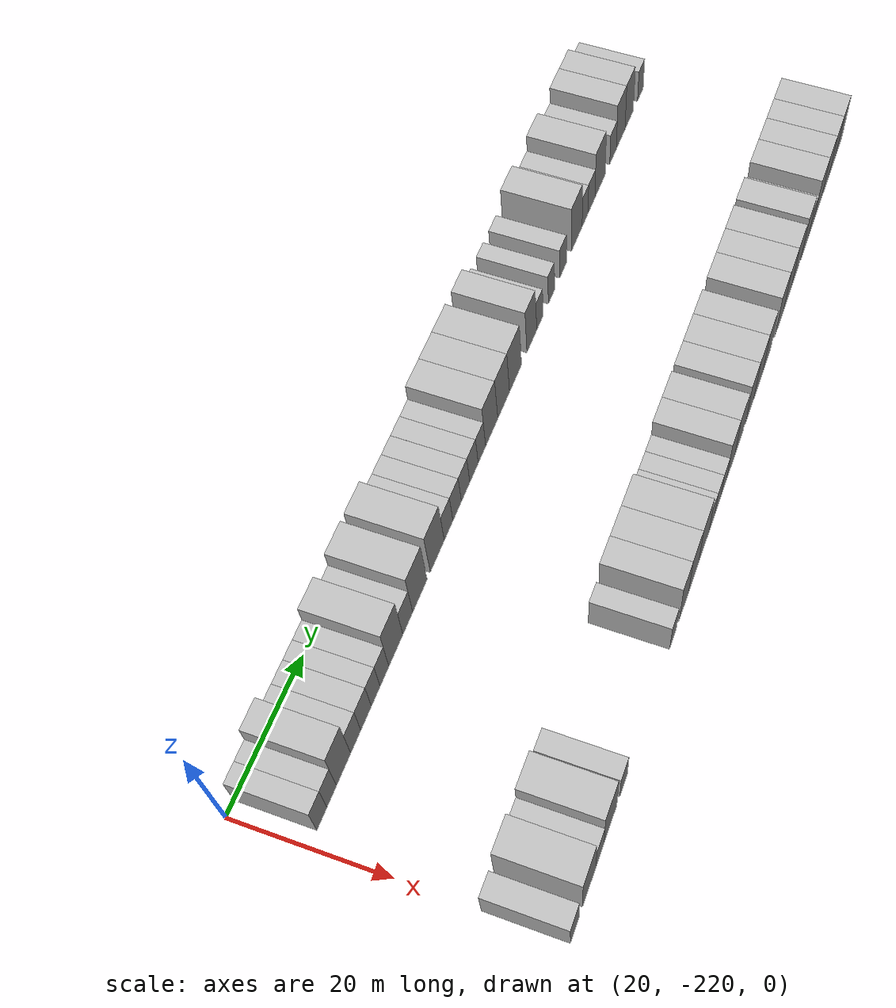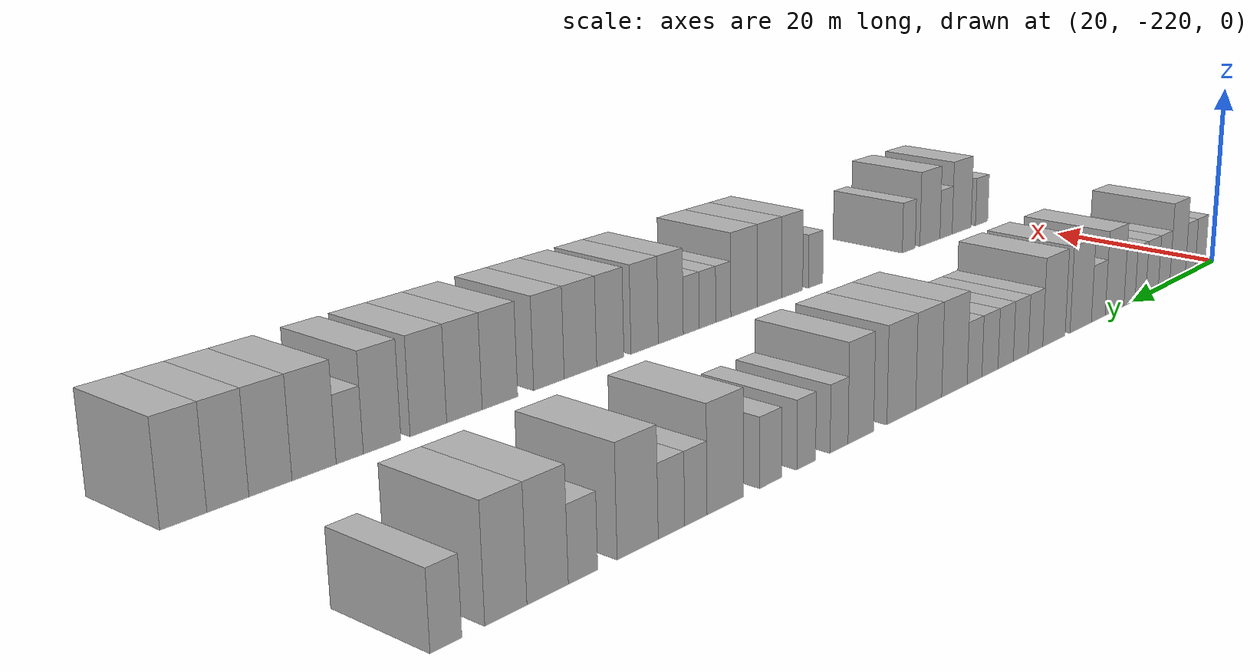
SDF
<sdf version="1.6">
 <world name="default">
  <model name="building_1">
   <static>1</static>
   <pose>25.0000 -216.6692 0 0.000000 0.000000 0.000000</pose>
   <link name="link">
    <pose>0 0 3.00 0 0 0</pose>
    <collision name="collision"><geometry><box><size>10.0000 2.6616 6.0000</size></box></geometry></collision>
    <visual name="visual">
     <cast_shadows>0</cast_shadows>
     <geometry><box><size>10.0000 2.6616 6.0000</size></box></geometry>
     <material>
      <script>
       <uri>model://HANNAS_wall/materials/scripts</uri>
       <uri>model://HANNAS_wall/materials/textures</uri>
       <name>vrc/HANNAS_wall</name>
      </script>
     </material>
    </visual>
   </link>
  </model>
  <model name="building_2">
   <static>1</static>
   <pose>25.0000 -214.0633 0 0.000000 0.000000 0.000000</pose>
   <link name="link">
    <pose>0 0 3.00 0 0 0</pose>
    <collision name="collision"><geometry><box><size>10.0000 2.5503 6.0000</size></box></geometry></collision>
    <visual name="visual">
     <cast_shadows>0</cast_shadows>
     <geometry><box><size>10.0000 2.5503 6.0000</size></box></geometry>
     <material>
      <script>
       <uri>model://HANNAS_wall/materials/scripts</uri>
       <uri>model://HANNAS_wall/materials/textures</uri>
       <name>vrc/HANNAS_wall</name>
      </script>
     </material>
    </visual>
   </link>
  </model>
  <model name="building_3">
   <static>1</static>
   <pose>25.0000 -210.8497 0 0.000000 0.000000 0.000000</pose>
   <link name="link">
    <pose>0 0 4.50 0 0 0</pose>
    <collision name="collision"><geometry><box><size>10.0000 3.8767 9.0000</size></box></geometry></collision>
    <visual name="visual">
     <cast_shadows>0</cast_shadows>
     <geometry><box><size>10.0000 3.8767 9.0000</size></box></geometry>
     <material>
      <script>
       <uri>model://HANNAS_wall/materials/scripts</uri>
       <uri>model://HANNAS_wall/materials/textures</uri>
       <name>vrc/HANNAS_wall</name>
      </script>
     </material>
    </visual>
   </link>
  </model>
  <model name="building_4">
   <static>1</static>
   <pose>25.0000 -207.5015 0 0.000000 0.000000 0.000000</pose>
   <link name="link">
    <pose>0 0 3.00 0 0 0</pose>
    <collision name="collision"><geometry><box><size>10.0000 2.8198 6.0000</size></box></geometry></collision>
    <visual name="visual">
     <cast_shadows>0</cast_shadows>
     <geometry><box><size>10.0000 2.8198 6.0000</size></box></geometry>
     <material>
      <script>
       <uri>model://HANNAS_wall/materials/scripts</uri>
       <uri>model://HANNAS_wall/materials/textures</uri>
       <name>vrc/HANNAS_wall</name>
      </script>
     </material>
    </visual>
   </link>
  </model>
  <model name="building_5">
   <static>1</static>
   <pose>25.0000 -204.5973 0 0.000000 0.000000 0.000000</pose>
   <link name="link">
    <pose>0 0 3.00 0 0 0</pose>
    <collision name="collision"><geometry><box><size>10.0000 2.9886 6.0000</size></box></geometry></collision>
    <visual name="visual">
     <cast_shadows>0</cast_shadows>
     <geometry><box><size>10.0000 2.9886 6.0000</size></box></geometry>
     <material>
      <script>
       <uri>model://HANNAS_wall/materials/scripts</uri>
       <uri>model://HANNAS_wall/materials/textures</uri>
       <name>vrc/HANNAS_wall</name>
      </script>
     </material>
    </visual>
   </link>
  </model>
  <model name="building_6">
   <static>1</static>
   <pose>25.0000 -201.8396 0 0.000000 0.000000 0.000000</pose>
   <link name="link">
    <pose>0 0 3.00 0 0 0</pose>
    <collision name="collision"><geometry><box><size>10.0000 2.5268 6.0000</size></box></geometry></collision>
    <visual name="visual">
     <cast_shadows>0</cast_shadows>
     <geometry><box><size>10.0000 2.5268 6.0000</size></box></geometry>
     <material>
      <script>
       <uri>model://HANNAS_wall/materials/scripts</uri>
       <uri>model://HANNAS_wall/materials/textures</uri>
       <name>vrc/HANNAS_wall</name>
      </script>
     </material>
    </visual>
   </link>
  </model>
  <model name="building_7">
   <static>1</static>
   <pose>25.0000 -199.2995 0 0.000000 0.000000 0.000000</pose>
   <link name="link">
    <pose>0 0 3.00 0 0 0</pose>
    <collision name="collision"><geometry><box><size>10.0000 2.5535 6.0000</size></box></geometry></collision>
    <visual name="visual">
     <cast_shadows>0</cast_shadows>
     <geometry><box><size>10.0000 2.5535 6.0000</size></box></geometry>
     <material>
      <script>
       <uri>model://HANNAS_wall/materials/scripts</uri>
       <uri>model://HANNAS_wall/materials/textures</uri>
       <name>vrc/HANNAS_wall</name>
      </script>
     </material>
    </visual>
   </link>
  </model>
  <model name="building_8">
   <static>1</static>
   <pose>25.0000 -195.9334 0 0.000000 0.000000 0.000000</pose>
   <link name="link">
    <pose>0 0 4.50 0 0 0</pose>
    <collision name="collision"><geometry><box><size>10.0000 4.1788 9.0000</size></box></geometry></collision>
    <visual name="visual">
     <cast_shadows>0</cast_shadows>
     <geometry><box><size>10.0000 4.1788 9.0000</size></box></geometry>
     <material>
      <script>
       <uri>model://HANNAS_wall/materials/scripts</uri>
       <uri>model://HANNAS_wall/materials/textures</uri>
       <name>vrc/HANNAS_wall</name>
      </script>
     </material>
    </visual>
   </link>
  </model>
  <model name="building_9">
   <static>1</static>
   <pose>25.0000 -192.3451 0 0.000000 0.000000 0.000000</pose>
   <link name="link">
    <pose>0 0 3.00 0 0 0</pose>
    <collision name="collision"><geometry><box><size>10.0000 2.9979 6.0000</size></box></geometry></collision>
    <visual name="visual">
     <cast_shadows>0</cast_shadows>
     <geometry><box><size>10.0000 2.9979 6.0000</size></box></geometry>
     <material>
      <script>
       <uri>model://HANNAS_wall/materials/scripts</uri>
       <uri>model://HANNAS_wall/materials/textures</uri>
       <name>vrc/HANNAS_wall</name>
      </script>
     </material>
    </visual>
   </link>
  </model>
  <model name="building_10">
   <static>1</static>
   <pose>25.0000 -188.6095 0 0.000000 0.000000 0.000000</pose>
   <link name="link">
    <pose>0 0 4.50 0 0 0</pose>
    <collision name="collision"><geometry><box><size>10.0000 4.4733 9.0000</size></box></geometry></collision>
    <visual name="visual">
     <cast_shadows>0</cast_shadows>
     <geometry><box><size>10.0000 4.4733 9.0000</size></box></geometry>
     <material>
      <script>
       <uri>model://HANNAS_wall/materials/scripts</uri>
       <uri>model://HANNAS_wall/materials/textures</uri>
       <name>vrc/HANNAS_wall</name>
      </script>
     </material>
    </visual>
   </link>
  </model>
  <model name="building_11">
   <static>1</static>
   <pose>25.0000 -183.1339 0 0.000000 0.000000 0.000000</pose>
   <link name="link">
    <pose>0 0 4.50 0 0 0</pose>
    <collision name="collision"><geometry><box><size>10.0000 4.4779 9.0000</size></box></geometry></collision>
    <visual name="visual">
     <cast_shadows>0</cast_shadows>
     <geometry><box><size>10.0000 4.4779 9.0000</size></box></geometry>
     <material>
      <script>
       <uri>model://HANNAS_wall/materials/scripts</uri>
       <uri>model://HANNAS_wall/materials/textures</uri>
       <name>vrc/HANNAS_wall</name>
      </script>
     </material>
    </visual>
   </link>
  </model>
  <model name="building_12">
   <static>1</static>
   <pose>25.0000 -179.4846 0 0.000000 0.000000 0.000000</pose>
   <link name="link">
    <pose>0 0 3.00 0 0 0</pose>
    <collision name="collision"><geometry><box><size>10.0000 2.8207 6.0000</size></box></geometry></collision>
    <visual name="visual">
     <cast_shadows>0</cast_shadows>
     <geometry><box><size>10.0000 2.8207 6.0000</size></box></geometry>
     <material>
      <script>
       <uri>model://HANNAS_wall/materials/scripts</uri>
       <uri>model://HANNAS_wall/materials/textures</uri>
       <name>vrc/HANNAS_wall</name>
      </script>
     </material>
    </visual>
   </link>
  </model>
  <model name="building_13">
   <static>1</static>
   <pose>25.0000 -176.6649 0 0.000000 0.000000 0.000000</pose>
   <link name="link">
    <pose>0 0 3.00 0 0 0</pose>
    <collision name="collision"><geometry><box><size>10.0000 2.8188 6.0000</size></box></geometry></collision>
    <visual name="visual">
     <cast_shadows>0</cast_shadows>
     <geometry><box><size>10.0000 2.8188 6.0000</size></box></geometry>
     <material>
      <script>
       <uri>model://HANNAS_wall/materials/scripts</uri>
       <uri>model://HANNAS_wall/materials/textures</uri>
       <name>vrc/HANNAS_wall</name>
      </script>
     </material>
    </visual>
   </link>
  </model>
  <model name="building_14">
   <static>1</static>
   <pose>25.0000 -173.8461 0 0.000000 0.000000 0.000000</pose>
   <link name="link">
    <pose>0 0 3.00 0 0 0</pose>
    <collision name="collision"><geometry><box><size>10.0000 2.8188 6.0000</size></box></geometry></collision>
    <visual name="visual">
     <cast_shadows>0</cast_shadows>
     <geometry><box><size>10.0000 2.8188 6.0000</size></box></geometry>
     <material>
      <script>
       <uri>model://HANNAS_wall/materials/scripts</uri>
       <uri>model://HANNAS_wall/materials/textures</uri>
       <name>vrc/HANNAS_wall</name>
      </script>
     </material>
    </visual>
   </link>
  </model>
  <model name="building_15">
   <static>1</static>
   <pose>25.0000 -170.9920 0 0.000000 0.000000 0.000000</pose>
   <link name="link">
    <pose>0 0 3.00 0 0 0</pose>
    <collision name="collision"><geometry><box><size>10.0000 2.8892 6.0000</size></box></geometry></collision>
    <visual name="visual">
     <cast_shadows>0</cast_shadows>
     <geometry><box><size>10.0000 2.8892 6.0000</size></box></geometry>
     <material>
      <script>
       <uri>model://HANNAS_wall/materials/scripts</uri>
       <uri>model://HANNAS_wall/materials/textures</uri>
       <name>vrc/HANNAS_wall</name>
      </script>
     </material>
    </visual>
   </link>
  </model>
  <model name="building_16">
   <static>1</static>
   <pose>25.0000 -168.2565 0 0.000000 0.000000 0.000000</pose>
   <link name="link">
    <pose>0 0 3.00 0 0 0</pose>
    <collision name="collision"><geometry><box><size>10.0000 2.5820 6.0000</size></box></geometry></collision>
    <visual name="visual">
     <cast_shadows>0</cast_shadows>
     <geometry><box><size>10.0000 2.5820 6.0000</size></box></geometry>
     <material>
      <script>
       <uri>model://HANNAS_wall/materials/scripts</uri>
       <uri>model://HANNAS_wall/materials/textures</uri>
       <name>vrc/HANNAS_wall</name>
      </script>
     </material>
    </visual>
   </link>
  </model>
  <model name="building_17">
   <static>1</static>
   <pose>25.0000 -164.8124 0 0.000000 0.000000 0.000000</pose>
   <link name="link">
    <pose>0 0 4.50 0 0 0</pose>
    <collision name="collision"><geometry><box><size>10.0000 4.3063 9.0000</size></box></geometry></collision>
    <visual name="visual">
     <cast_shadows>0</cast_shadows>
     <geometry><box><size>10.0000 4.3063 9.0000</size></box></geometry>
     <material>
      <script>
       <uri>model://HANNAS_wall/materials/scripts</uri>
       <uri>model://HANNAS_wall/materials/textures</uri>
       <name>vrc/HANNAS_wall</name>
      </script>
     </material>
    </visual>
   </link>
  </model>
  <model name="building_18">
   <static>1</static>
   <pose>25.0000 -160.5485 0 0.000000 0.000000 0.000000</pose>
   <link name="link">
    <pose>0 0 4.50 0 0 0</pose>
    <collision name="collision"><geometry><box><size>10.0000 4.2215 9.0000</size></box></geometry></collision>
    <visual name="visual">
     <cast_shadows>0</cast_shadows>
     <geometry><box><size>10.0000 4.2215 9.0000</size></box></geometry>
     <material>
      <script>
       <uri>model://HANNAS_wall/materials/scripts</uri>
       <uri>model://HANNAS_wall/materials/textures</uri>
       <name>vrc/HANNAS_wall</name>
      </script>
     </material>
    </visual>
   </link>
  </model>
  <model name="building_19">
   <static>1</static>
   <pose>25.0000 -156.2051 0 0.000000 0.000000 0.000000</pose>
   <link name="link">
    <pose>0 0 4.50 0 0 0</pose>
    <collision name="collision"><geometry><box><size>10.0000 4.4653 9.0000</size></box></geometry></collision>
    <visual name="visual">
     <cast_shadows>0</cast_shadows>
     <geometry><box><size>10.0000 4.4653 9.0000</size></box></geometry>
     <material>
      <script>
       <uri>model://HANNAS_wall/materials/scripts</uri>
       <uri>model://HANNAS_wall/materials/textures</uri>
       <name>vrc/HANNAS_wall</name>
      </script>
     </material>
    </visual>
   </link>
  </model>
  <model name="building_20">
   <static>1</static>
   <pose>25.0000 -150.1015 0 0.000000 0.000000 0.000000</pose>
   <link name="link">
    <pose>0 0 4.50 0 0 0</pose>
    <collision name="collision"><geometry><box><size>10.0000 3.7419 9.0000</size></box></geometry></collision>
    <visual name="visual">
     <cast_shadows>0</cast_shadows>
     <geometry><box><size>10.0000 3.7419 9.0000</size></box></geometry>
     <material>
      <script>
       <uri>model://HANNAS_wall/materials/scripts</uri>
       <uri>model://HANNAS_wall/materials/textures</uri>
       <name>vrc/HANNAS_wall</name>
      </script>
     </material>
    </visual>
   </link>
  </model>
  <model name="building_21">
   <static>1</static>
   <pose>25.0000 -146.9632 0 0.000000 0.000000 0.000000</pose>
   <link name="link">
    <pose>0 0 3.00 0 0 0</pose>
    <collision name="collision"><geometry><box><size>10.0000 2.5347 6.0000</size></box></geometry></collision>
    <visual name="visual">
     <cast_shadows>0</cast_shadows>
     <geometry><box><size>10.0000 2.5347 6.0000</size></box></geometry>
     <material>
      <script>
       <uri>model://HANNAS_wall/materials/scripts</uri>
       <uri>model://HANNAS_wall/materials/textures</uri>
       <name>vrc/HANNAS_wall</name>
      </script>
     </material>
    </visual>
   </link>
  </model>
  <model name="building_22">
   <static>1</static>
   <pose>25.0000 -142.4264 0 0.000000 0.000000 0.000000</pose>
   <link name="link">
    <pose>0 0 3.00 0 0 0</pose>
    <collision name="collision"><geometry><box><size>10.0000 2.5390 6.0000</size></box></geometry></collision>
    <visual name="visual">
     <cast_shadows>0</cast_shadows>
     <geometry><box><size>10.0000 2.5390 6.0000</size></box></geometry>
     <material>
      <script>
       <uri>model://HANNAS_wall/materials/scripts</uri>
       <uri>model://HANNAS_wall/materials/textures</uri>
       <name>vrc/HANNAS_wall</name>
      </script>
     </material>
    </visual>
   </link>
  </model>
  <model name="building_23">
   <static>1</static>
   <pose>25.0000 -137.7569 0 0.000000 0.000000 0.000000</pose>
   <link name="link">
    <pose>0 0 3.00 0 0 0</pose>
    <collision name="collision"><geometry><box><size>10.0000 2.7999 6.0000</size></box></geometry></collision>
    <visual name="visual">
     <cast_shadows>0</cast_shadows>
     <geometry><box><size>10.0000 2.7999 6.0000</size></box></geometry>
     <material>
      <script>
       <uri>model://HANNAS_wall/materials/scripts</uri>
       <uri>model://HANNAS_wall/materials/textures</uri>
       <name>vrc/HANNAS_wall</name>
      </script>
     </material>
    </visual>
   </link>
  </model>
  <model name="building_24">
   <static>1</static>
   <pose>25.0000 -132.1491 0 0.000000 0.000000 0.000000</pose>
   <link name="link">
    <pose>0 0 4.50 0 0 0</pose>
    <collision name="collision"><geometry><box><size>10.0000 4.4158 9.0000</size></box></geometry></collision>
    <visual name="visual">
     <cast_shadows>0</cast_shadows>
     <geometry><box><size>10.0000 4.4158 9.0000</size></box></geometry>
     <material>
      <script>
       <uri>model://HANNAS_wall/materials/scripts</uri>
       <uri>model://HANNAS_wall/materials/textures</uri>
       <name>vrc/HANNAS_wall</name>
      </script>
     </material>
    </visual>
   </link>
  </model>
  <model name="building_25">
   <static>1</static>
   <pose>25.0000 -128.6467 0 0.000000 0.000000 0.000000</pose>
   <link name="link">
    <pose>0 0 3.00 0 0 0</pose>
    <collision name="collision"><geometry><box><size>10.0000 2.5891 6.0000</size></box></geometry></collision>
    <visual name="visual">
     <cast_shadows>0</cast_shadows>
     <geometry><box><size>10.0000 2.5891 6.0000</size></box></geometry>
     <material>
      <script>
       <uri>model://HANNAS_wall/materials/scripts</uri>
       <uri>model://HANNAS_wall/materials/textures</uri>
       <name>vrc/HANNAS_wall</name>
      </script>
     </material>
    </visual>
   </link>
  </model>
  <model name="building_26">
   <static>1</static>
   <pose>25.0000 -125.8734 0 0.000000 0.000000 0.000000</pose>
   <link name="link">
    <pose>0 0 3.00 0 0 0</pose>
    <collision name="collision"><geometry><box><size>10.0000 2.9575 6.0000</size></box></geometry></collision>
    <visual name="visual">
     <cast_shadows>0</cast_shadows>
     <geometry><box><size>10.0000 2.9575 6.0000</size></box></geometry>
     <material>
      <script>
       <uri>model://HANNAS_wall/materials/scripts</uri>
       <uri>model://HANNAS_wall/materials/textures</uri>
       <name>vrc/HANNAS_wall</name>
      </script>
     </material>
    </visual>
   </link>
  </model>
  <model name="building_27">
   <static>1</static>
   <pose>25.0000 -122.1930 0 0.000000 0.000000 0.000000</pose>
   <link name="link">
    <pose>0 0 4.50 0 0 0</pose>
    <collision name="collision"><geometry><box><size>10.0000 4.4033 9.0000</size></box></geometry></collision>
    <visual name="visual">
     <cast_shadows>0</cast_shadows>
     <geometry><box><size>10.0000 4.4033 9.0000</size></box></geometry>
     <material>
      <script>
       <uri>model://HANNAS_wall/materials/scripts</uri>
       <uri>model://HANNAS_wall/materials/textures</uri>
       <name>vrc/HANNAS_wall</name>
      </script>
     </material>
    </visual>
   </link>
  </model>
  <model name="building_28">
   <static>1</static>
   <pose>25.0000 -116.5215 0 0.000000 0.000000 0.000000</pose>
   <link name="link">
    <pose>0 0 3.00 0 0 0</pose>
    <collision name="collision"><geometry><box><size>10.0000 2.9397 6.0000</size></box></geometry></collision>
    <visual name="visual">
     <cast_shadows>0</cast_shadows>
     <geometry><box><size>10.0000 2.9397 6.0000</size></box></geometry>
     <material>
      <script>
       <uri>model://HANNAS_wall/materials/scripts</uri>
       <uri>model://HANNAS_wall/materials/textures</uri>
       <name>vrc/HANNAS_wall</name>
      </script>
     </material>
    </visual>
   </link>
  </model>
  <model name="building_29">
   <static>1</static>
   <pose>25.0000 -113.0702 0 0.000000 0.000000 0.000000</pose>
   <link name="link">
    <pose>0 0 4.50 0 0 0</pose>
    <collision name="collision"><geometry><box><size>10.0000 3.9629 9.0000</size></box></geometry></collision>
    <visual name="visual">
     <cast_shadows>0</cast_shadows>
     <geometry><box><size>10.0000 3.9629 9.0000</size></box></geometry>
     <material>
      <script>
       <uri>model://HANNAS_wall/materials/scripts</uri>
       <uri>model://HANNAS_wall/materials/textures</uri>
       <name>vrc/HANNAS_wall</name>
      </script>
     </material>
    </visual>
   </link>
  </model>
  <model name="building_30">
   <static>1</static>
   <pose>25.0000 -109.1704 0 0.000000 0.000000 0.000000</pose>
   <link name="link">
    <pose>0 0 4.50 0 0 0</pose>
    <collision name="collision"><geometry><box><size>10.0000 3.8366 9.0000</size></box></geometry></collision>
    <visual name="visual">
     <cast_shadows>0</cast_shadows>
     <geometry><box><size>10.0000 3.8366 9.0000</size></box></geometry>
     <material>
      <script>
       <uri>model://HANNAS_wall/materials/scripts</uri>
       <uri>model://HANNAS_wall/materials/textures</uri>
       <name>vrc/HANNAS_wall</name>
      </script>
     </material>
    </visual>
   </link>
  </model>
  <model name="building_31">
   <static>1</static>
   <pose>25.0000 -103.8944 0 0.000000 0.000000 0.000000</pose>
   <link name="link">
    <pose>0 0 3.00 0 0 0</pose>
    <collision name="collision"><geometry><box><size>10.0000 2.7154 6.0000</size></box></geometry></collision>
    <visual name="visual">
     <cast_shadows>0</cast_shadows>
     <geometry><box><size>10.0000 2.7154 6.0000</size></box></geometry>
     <material>
      <script>
       <uri>model://HANNAS_wall/materials/scripts</uri>
       <uri>model://HANNAS_wall/materials/textures</uri>
       <name>vrc/HANNAS_wall</name>
      </script>
     </material>
    </visual>
   </link>
  </model>
  <model name="building_118">
   <static>1</static>
   <pose>55.0000 -218.5407 0 0.000000 0.000000 0.000000</pose>
   <link name="link">
    <pose>0 0 3.00 0 0 0</pose>
    <collision name="collision"><geometry><box><size>10.0000 2.9187 6.0000</size></box></geometry></collision>
    <visual name="visual">
     <cast_shadows>0</cast_shadows>
     <geometry><box><size>10.0000 2.9187 6.0000</size></box></geometry>
     <material>
      <script>
       <uri>model://HANNAS_wall/materials/scripts</uri>
       <uri>model://HANNAS_wall/materials/textures</uri>
       <name>vrc/HANNAS_wall</name>
      </script>
     </material>
    </visual>
   </link>
  </model>
  <model name="building_119">
   <static>1</static>
   <pose>55.0000 -213.8973 0 0.000000 0.000000 0.000000</pose>
   <link name="link">
    <pose>0 0 4.50 0 0 0</pose>
    <collision name="collision"><geometry><box><size>10.0000 4.3681 9.0000</size></box></geometry></collision>
    <visual name="visual">
     <cast_shadows>0</cast_shadows>
     <geometry><box><size>10.0000 4.3681 9.0000</size></box></geometry>
     <material>
      <script>
       <uri>model://HANNAS_wall/materials/scripts</uri>
       <uri>model://HANNAS_wall/materials/textures</uri>
       <name>vrc/HANNAS_wall</name>
      </script>
     </material>
    </visual>
   </link>
  </model>
  <model name="building_120">
   <static>1</static>
   <pose>55.0000 -210.3514 0 0.000000 0.000000 0.000000</pose>
   <link name="link">
    <pose>0 0 3.00 0 0 0</pose>
    <collision name="collision"><geometry><box><size>10.0000 2.7237 6.0000</size></box></geometry></collision>
    <visual name="visual">
     <cast_shadows>0</cast_shadows>
     <geometry><box><size>10.0000 2.7237 6.0000</size></box></geometry>
     <material>
      <script>
       <uri>model://HANNAS_wall/materials/scripts</uri>
       <uri>model://HANNAS_wall/materials/textures</uri>
       <name>vrc/HANNAS_wall</name>
      </script>
     </material>
    </visual>
   </link>
  </model>
  <model name="building_121">
   <static>1</static>
   <pose>55.0000 -206.8050 0 0.000000 0.000000 0.000000</pose>
   <link name="link">
    <pose>0 0 4.50 0 0 0</pose>
    <collision name="collision"><geometry><box><size>10.0000 4.3690 9.0000</size></box></geometry></collision>
    <visual name="visual">
     <cast_shadows>0</cast_shadows>
     <geometry><box><size>10.0000 4.3690 9.0000</size></box></geometry>
     <material>
      <script>
       <uri>model://HANNAS_wall/materials/scripts</uri>
       <uri>model://HANNAS_wall/materials/textures</uri>
       <name>vrc/HANNAS_wall</name>
      </script>
     </material>
    </visual>
   </link>
  </model>
  <model name="building_122">
   <static>1</static>
   <pose>55.0000 -202.2596 0 0.000000 0.000000 0.000000</pose>
   <link name="link">
    <pose>0 0 3.00 0 0 0</pose>
    <collision name="collision"><geometry><box><size>10.0000 2.7219 6.0000</size></box></geometry></collision>
    <visual name="visual">
     <cast_shadows>0</cast_shadows>
     <geometry><box><size>10.0000 2.7219 6.0000</size></box></geometry>
     <material>
      <script>
       <uri>model://HANNAS_wall/materials/scripts</uri>
       <uri>model://HANNAS_wall/materials/textures</uri>
       <name>vrc/HANNAS_wall</name>
      </script>
     </material>
    </visual>
   </link>
  </model>
  <model name="building_123">
   <static>1</static>
   <pose>55.0000 -183.9188 0 0.000000 0.000000 0.000000</pose>
   <link name="link">
    <pose>0 0 3.00 0 0 0</pose>
    <collision name="collision"><geometry><box><size>10.0000 2.6532 6.0000</size></box></geometry></collision>
    <visual name="visual">
     <cast_shadows>0</cast_shadows>
     <geometry><box><size>10.0000 2.6532 6.0000</size></box></geometry>
     <material>
      <script>
       <uri>model://HANNAS_wall/materials/scripts</uri>
       <uri>model://HANNAS_wall/materials/textures</uri>
       <name>vrc/HANNAS_wall</name>
      </script>
     </material>
    </visual>
   </link>
  </model>
  <model name="building_124">
   <static>1</static>
   <pose>55.0000 -179.7242 0 0.000000 0.000000 0.000000</pose>
   <link name="link">
    <pose>0 0 4.50 0 0 0</pose>
    <collision name="collision"><geometry><box><size>10.0000 3.7359 9.0000</size></box></geometry></collision>
    <visual name="visual">
     <cast_shadows>0</cast_shadows>
     <geometry><box><size>10.0000 3.7359 9.0000</size></box></geometry>
     <material>
      <script>
       <uri>model://HANNAS_wall/materials/scripts</uri>
       <uri>model://HANNAS_wall/materials/textures</uri>
       <name>vrc/HANNAS_wall</name>
      </script>
     </material>
    </visual>
   </link>
  </model>
  <model name="building_125">
   <static>1</static>
   <pose>55.0000 -175.7832 0 0.000000 0.000000 0.000000</pose>
   <link name="link">
    <pose>0 0 4.50 0 0 0</pose>
    <collision name="collision"><geometry><box><size>10.0000 4.1460 9.0000</size></box></geometry></collision>
    <visual name="visual">
     <cast_shadows>0</cast_shadows>
     <geometry><box><size>10.0000 4.1460 9.0000</size></box></geometry>
     <material>
      <script>
       <uri>model://HANNAS_wall/materials/scripts</uri>
       <uri>model://HANNAS_wall/materials/textures</uri>
       <name>vrc/HANNAS_wall</name>
      </script>
     </material>
    </visual>
   </link>
  </model>
  <model name="building_126">
   <static>1</static>
   <pose>55.0000 -171.4972 0 0.000000 0.000000 0.000000</pose>
   <link name="link">
    <pose>0 0 4.50 0 0 0</pose>
    <collision name="collision"><geometry><box><size>10.0000 4.4260 9.0000</size></box></geometry></collision>
    <visual name="visual">
     <cast_shadows>0</cast_shadows>
     <geometry><box><size>10.0000 4.4260 9.0000</size></box></geometry>
     <material>
      <script>
       <uri>model://HANNAS_wall/materials/scripts</uri>
       <uri>model://HANNAS_wall/materials/textures</uri>
       <name>vrc/HANNAS_wall</name>
      </script>
     </material>
    </visual>
   </link>
  </model>
  <model name="building_127">
   <static>1</static>
   <pose>55.0000 -168.0741 0 0.000000 0.000000 0.000000</pose>
   <link name="link">
    <pose>0 0 3.00 0 0 0</pose>
    <collision name="collision"><geometry><box><size>10.0000 2.4201 6.0000</size></box></geometry></collision>
    <visual name="visual">
     <cast_shadows>0</cast_shadows>
     <geometry><box><size>10.0000 2.4201 6.0000</size></box></geometry>
     <material>
      <script>
       <uri>model://HANNAS_wall/materials/scripts</uri>
       <uri>model://HANNAS_wall/materials/textures</uri>
       <name>vrc/HANNAS_wall</name>
      </script>
     </material>
    </visual>
   </link>
  </model>
  <model name="building_128">
   <static>1</static>
   <pose>55.0000 -165.5595 0 0.000000 0.000000 0.000000</pose>
   <link name="link">
    <pose>0 0 3.00 0 0 0</pose>
    <collision name="collision"><geometry><box><size>10.0000 2.6090 6.0000</size></box></geometry></collision>
    <visual name="visual">
     <cast_shadows>0</cast_shadows>
     <geometry><box><size>10.0000 2.6090 6.0000</size></box></geometry>
     <material>
      <script>
       <uri>model://HANNAS_wall/materials/scripts</uri>
       <uri>model://HANNAS_wall/materials/textures</uri>
       <name>vrc/HANNAS_wall</name>
      </script>
     </material>
    </visual>
   </link>
  </model>
  <model name="building_129">
   <static>1</static>
   <pose>55.0000 -163.0246 0 0.000000 0.000000 0.000000</pose>
   <link name="link">
    <pose>0 0 3.00 0 0 0</pose>
    <collision name="collision"><geometry><box><size>10.0000 2.4610 6.0000</size></box></geometry></collision>
    <visual name="visual">
     <cast_shadows>0</cast_shadows>
     <geometry><box><size>10.0000 2.4610 6.0000</size></box></geometry>
     <material>
      <script>
       <uri>model://HANNAS_wall/materials/scripts</uri>
       <uri>model://HANNAS_wall/materials/textures</uri>
       <name>vrc/HANNAS_wall</name>
      </script>
     </material>
    </visual>
   </link>
  </model>
  <model name="building_130">
   <static>1</static>
   <pose>55.0000 -159.9180 0 0.000000 0.000000 0.000000</pose>
   <link name="link">
    <pose>0 0 4.50 0 0 0</pose>
    <collision name="collision"><geometry><box><size>10.0000 3.7521 9.0000</size></box></geometry></collision>
    <visual name="visual">
     <cast_shadows>0</cast_shadows>
     <geometry><box><size>10.0000 3.7521 9.0000</size></box></geometry>
     <material>
      <script>
       <uri>model://HANNAS_wall/materials/scripts</uri>
       <uri>model://HANNAS_wall/materials/textures</uri>
       <name>vrc/HANNAS_wall</name>
      </script>
     </material>
    </visual>
   </link>
  </model>
  <model name="building_131">
   <static>1</static>
   <pose>55.0000 -156.0631 0 0.000000 0.000000 0.000000</pose>
   <link name="link">
    <pose>0 0 4.50 0 0 0</pose>
    <collision name="collision"><geometry><box><size>10.0000 3.9577 9.0000</size></box></geometry></collision>
    <visual name="visual">
     <cast_shadows>0</cast_shadows>
     <geometry><box><size>10.0000 3.9577 9.0000</size></box></geometry>
     <material>
      <script>
       <uri>model://HANNAS_wall/materials/scripts</uri>
       <uri>model://HANNAS_wall/materials/textures</uri>
       <name>vrc/HANNAS_wall</name>
      </script>
     </material>
    </visual>
   </link>
  </model>
  <model name="building_132">
   <static>1</static>
   <pose>55.0000 -151.1967 0 0.000000 0.000000 0.000000</pose>
   <link name="link">
    <pose>0 0 4.50 0 0 0</pose>
    <collision name="collision"><geometry><box><size>10.0000 3.7752 9.0000</size></box></geometry></collision>
    <visual name="visual">
     <cast_shadows>0</cast_shadows>
     <geometry><box><size>10.0000 3.7752 9.0000</size></box></geometry>
     <material>
      <script>
       <uri>model://HANNAS_wall/materials/scripts</uri>
       <uri>model://HANNAS_wall/materials/textures</uri>
       <name>vrc/HANNAS_wall</name>
      </script>
     </material>
    </visual>
   </link>
  </model>
  <model name="building_133">
   <static>1</static>
   <pose>55.0000 -147.1388 0 0.000000 0.000000 0.000000</pose>
   <link name="link">
    <pose>0 0 4.50 0 0 0</pose>
    <collision name="collision"><geometry><box><size>10.0000 4.3406 9.0000</size></box></geometry></collision>
    <visual name="visual">
     <cast_shadows>0</cast_shadows>
     <geometry><box><size>10.0000 4.3406 9.0000</size></box></geometry>
     <material>
      <script>
       <uri>model://HANNAS_wall/materials/scripts</uri>
       <uri>model://HANNAS_wall/materials/textures</uri>
       <name>vrc/HANNAS_wall</name>
      </script>
     </material>
    </visual>
   </link>
  </model>
  <model name="building_134">
   <static>1</static>
   <pose>55.0000 -143.0027 0 0.000000 0.000000 0.000000</pose>
   <link name="link">
    <pose>0 0 4.50 0 0 0</pose>
    <collision name="collision"><geometry><box><size>10.0000 3.9316 9.0000</size></box></geometry></collision>
    <visual name="visual">
     <cast_shadows>0</cast_shadows>
     <geometry><box><size>10.0000 3.9316 9.0000</size></box></geometry>
     <material>
      <script>
       <uri>model://HANNAS_wall/materials/scripts</uri>
       <uri>model://HANNAS_wall/materials/textures</uri>
       <name>vrc/HANNAS_wall</name>
      </script>
     </material>
    </visual>
   </link>
  </model>
  <model name="building_135">
   <static>1</static>
   <pose>55.0000 -136.8863 0 0.000000 0.000000 0.000000</pose>
   <link name="link">
    <pose>0 0 4.50 0 0 0</pose>
    <collision name="collision"><geometry><box><size>10.0000 4.3010 9.0000</size></box></geometry></collision>
    <visual name="visual">
     <cast_shadows>0</cast_shadows>
     <geometry><box><size>10.0000 4.3010 9.0000</size></box></geometry>
     <material>
      <script>
       <uri>model://HANNAS_wall/materials/scripts</uri>
       <uri>model://HANNAS_wall/materials/textures</uri>
       <name>vrc/HANNAS_wall</name>
      </script>
     </material>
    </visual>
   </link>
  </model>
  <model name="building_136">
   <static>1</static>
   <pose>55.0000 -132.6694 0 0.000000 0.000000 0.000000</pose>
   <link name="link">
    <pose>0 0 4.50 0 0 0</pose>
    <collision name="collision"><geometry><box><size>10.0000 4.1328 9.0000</size></box></geometry></collision>
    <visual name="visual">
     <cast_shadows>0</cast_shadows>
     <geometry><box><size>10.0000 4.1328 9.0000</size></box></geometry>
     <material>
      <script>
       <uri>model://HANNAS_wall/materials/scripts</uri>
       <uri>model://HANNAS_wall/materials/textures</uri>
       <name>vrc/HANNAS_wall</name>
      </script>
     </material>
    </visual>
   </link>
  </model>
  <model name="building_137">
   <static>1</static>
   <pose>55.0000 -128.5619 0 0.000000 0.000000 0.000000</pose>
   <link name="link">
    <pose>0 0 4.50 0 0 0</pose>
    <collision name="collision"><geometry><box><size>10.0000 4.0823 9.0000</size></box></geometry></collision>
    <visual name="visual">
     <cast_shadows>0</cast_shadows>
     <geometry><box><size>10.0000 4.0823 9.0000</size></box></geometry>
     <material>
      <script>
       <uri>model://HANNAS_wall/materials/scripts</uri>
       <uri>model://HANNAS_wall/materials/textures</uri>
       <name>vrc/HANNAS_wall</name>
      </script>
     </material>
    </visual>
   </link>
  </model>
  <model name="building_138">
   <static>1</static>
   <pose>55.0000 -123.5275 0 0.000000 0.000000 0.000000</pose>
   <link name="link">
    <pose>0 0 4.50 0 0 0</pose>
    <collision name="collision"><geometry><box><size>10.0000 3.9864 9.0000</size></box></geometry></collision>
    <visual name="visual">
     <cast_shadows>0</cast_shadows>
     <geometry><box><size>10.0000 3.9864 9.0000</size></box></geometry>
     <material>
      <script>
       <uri>model://HANNAS_wall/materials/scripts</uri>
       <uri>model://HANNAS_wall/materials/textures</uri>
       <name>vrc/HANNAS_wall</name>
      </script>
     </material>
    </visual>
   </link>
  </model>
  <model name="building_139">
   <static>1</static>
   <pose>55.0000 -120.1479 0 0.000000 0.000000 0.000000</pose>
   <link name="link">
    <pose>0 0 3.00 0 0 0</pose>
    <collision name="collision"><geometry><box><size>10.0000 2.7729 6.0000</size></box></geometry></collision>
    <visual name="visual">
     <cast_shadows>0</cast_shadows>
     <geometry><box><size>10.0000 2.7729 6.0000</size></box></geometry>
     <material>
      <script>
       <uri>model://HANNAS_wall/materials/scripts</uri>
       <uri>model://HANNAS_wall/materials/textures</uri>
       <name>vrc/HANNAS_wall</name>
      </script>
     </material>
    </visual>
   </link>
  </model>
  <model name="building_140">
   <static>1</static>
   <pose>55.0000 -116.5874 0 0.000000 0.000000 0.000000</pose>
   <link name="link">
    <pose>0 0 4.50 0 0 0</pose>
    <collision name="collision"><geometry><box><size>10.0000 4.3480 9.0000</size></box></geometry></collision>
    <visual name="visual">
     <cast_shadows>0</cast_shadows>
     <geometry><box><size>10.0000 4.3480 9.0000</size></box></geometry>
     <material>
      <script>
       <uri>model://HANNAS_wall/materials/scripts</uri>
       <uri>model://HANNAS_wall/materials/textures</uri>
       <name>vrc/HANNAS_wall</name>
      </script>
     </material>
    </visual>
   </link>
  </model>
  <model name="building_141">
   <static>1</static>
   <pose>55.0000 -112.3862 0 0.000000 0.000000 0.000000</pose>
   <link name="link">
    <pose>0 0 4.50 0 0 0</pose>
    <collision name="collision"><geometry><box><size>10.0000 4.0543 9.0000</size></box></geometry></collision>
    <visual name="visual">
     <cast_shadows>0</cast_shadows>
     <geometry><box><size>10.0000 4.0543 9.0000</size></box></geometry>
     <material>
      <script>
       <uri>model://HANNAS_wall/materials/scripts</uri>
       <uri>model://HANNAS_wall/materials/textures</uri>
       <name>vrc/HANNAS_wall</name>
      </script>
     </material>
    </visual>
   </link>
  </model>
  <model name="building_142">
   <static>1</static>
   <pose>55.0000 -108.4685 0 0.000000 0.000000 0.000000</pose>
   <link name="link">
    <pose>0 0 4.50 0 0 0</pose>
    <collision name="collision"><geometry><box><size>10.0000 3.7811 9.0000</size></box></geometry></collision>
    <visual name="visual">
     <cast_shadows>0</cast_shadows>
     <geometry><box><size>10.0000 3.7811 9.0000</size></box></geometry>
     <material>
      <script>
       <uri>model://HANNAS_wall/materials/scripts</uri>
       <uri>model://HANNAS_wall/materials/textures</uri>
       <name>vrc/HANNAS_wall</name>
      </script>
     </material>
    </visual>
   </link>
  </model>
  <model name="building_143">
   <static>1</static>
   <pose>55.0000 -104.5483 0 0.000000 0.000000 0.000000</pose>
   <link name="link">
    <pose>0 0 4.50 0 0 0</pose>
    <collision name="collision"><geometry><box><size>10.0000 4.0592 9.0000</size></box></geometry></collision>
    <visual name="visual">
     <cast_shadows>0</cast_shadows>
     <geometry><box><size>10.0000 4.0592 9.0000</size></box></geometry>
     <material>
      <script>
       <uri>model://HANNAS_wall/materials/scripts</uri>
       <uri>model://HANNAS_wall/materials/textures</uri>
       <name>vrc/HANNAS_wall</name>
      </script>
     </material>
    </visual>
   </link>
  </model>
 </world>
</sdf>
